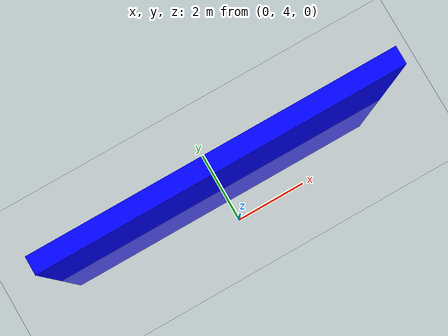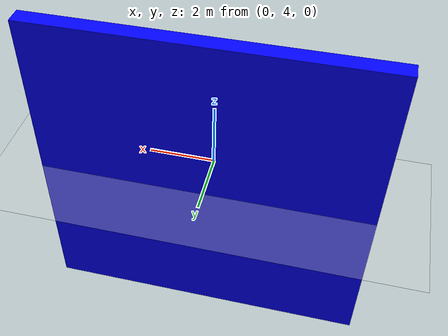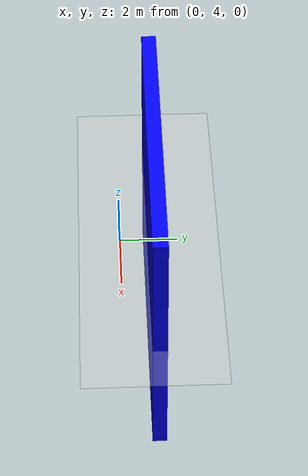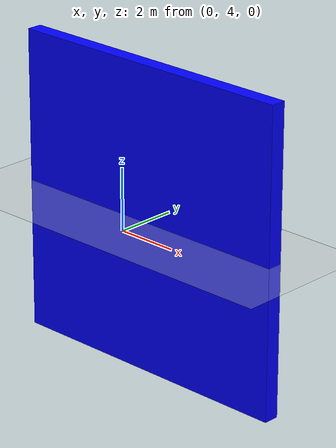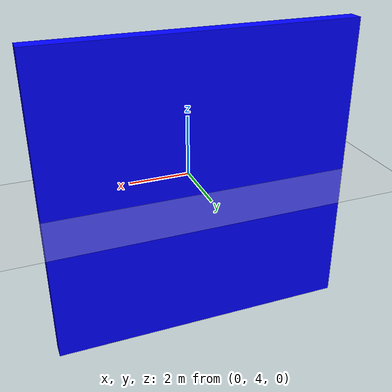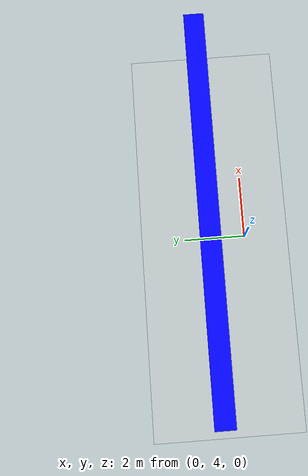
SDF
<sdf version='1.9'>
  <world name='default_wall'>
    <physics type="ode">
      <max_step_size>0.004</max_step_size>
      <real_time_factor>1.0</real_time_factor>
      <real_time_update_rate>250</real_time_update_rate>
    </physics>
    <plugin name='gz::sim::systems::Physics' filename='gz-sim-physics-system'/>
    <plugin name='gz::sim::systems::UserCommands' filename='gz-sim-user-commands-system'/>
    <plugin name='gz::sim::systems::SceneBroadcaster' filename='gz-sim-scene-broadcaster-system'/>
    <plugin name='gz::sim::systems::Contact' filename='gz-sim-contact-system'/>
    <plugin name='gz::sim::systems::Imu' filename='gz-sim-imu-system'/>
    <plugin name='gz::sim::systems::AirPressure' filename='gz-sim-air-pressure-system'/>
    <!-- Force sensor plugin -->
    <plugin name='gz::sim::systems::ForceTorque' filename='gz-sim-forcetorque-system'/>
    <plugin name='gz::sim::systems::Sensors' filename='gz-sim-sensors-system'>
      <render_engine>ogre2</render_engine>
    </plugin>
    <gui fullscreen='false'>
      <plugin name='3D View' filename='GzScene3D'>
        <gz-gui>
          <title>3D View</title>
          <property type='bool' key='showTitleBar'>0</property>
          <property type='string' key='state'>docked</property>
        </gz-gui>
        <engine>ogre2</engine>
        <scene>scene</scene>
        <ambient_light>0.5984631152222222 0.5984631152222222 0.5984631152222222</ambient_light>
        <background_color>0.8984631152222222 0.8984631152222222 0.8984631152222222</background_color>
        <camera_pose>-6 0 6 0 0.5 0</camera_pose>
      </plugin>
      <plugin name='World control' filename='WorldControl'>
        <gz-gui>
          <title>World control</title>
          <property type='bool' key='showTitleBar'>0</property>
          <property type='bool' key='resizable'>0</property>
          <property type='double' key='height'>72</property>
          <property type='double' key='width'>121</property>
          <property type='double' key='z'>1</property>
          <property type='string' key='state'>floating</property>
          <anchors target='3D View'>
            <line own='left' target='left'/>
            <line own='bottom' target='bottom'/>
          </anchors>
        </gz-gui>
        <play_pause>1</play_pause>
        <step>1</step>
        <start_paused>1</start_paused>
      </plugin>
      <plugin name='World stats' filename='WorldStats'>
        <gz-gui>
          <title>World stats</title>
          <property type='bool' key='showTitleBar'>0</property>
          <property type='bool' key='resizable'>0</property>
          <property type='double' key='height'>110</property>
          <property type='double' key='width'>290</property>
          <property type='double' key='z'>1</property>
          <property type='string' key='state'>floating</property>
          <anchors target='3D View'>
            <line own='right' target='right'/>
            <line own='bottom' target='bottom'/>
          </anchors>
        </gz-gui>
        <sim_time>1</sim_time>
        <real_time>1</real_time>
        <real_time_factor>1</real_time_factor>
        <iterations>1</iterations>
      </plugin>
      <plugin name='Entity tree' filename='EntityTree'/>
    </gui>
    <gravity>0 0 -9.8</gravity>
    <magnetic_field>6e-06 2.3e-05 -4.2e-05</magnetic_field>
    <atmosphere type='adiabatic'/>
    <scene>
      <grid>true</grid>
      <ambient>0.4 0.4 0.4 1</ambient>
      <background>0.7 0.7 0.7 1</background>
      <shadows>true</shadows>
    </scene>
    <model name='ground_plane'>
      <static>true</static>
      <link name='link'>
        <collision name='collision'>
          <geometry>
            <plane>
              <normal>0 0 1</normal>
              <size>1 1</size>
            </plane>
          </geometry>
          <surface>
            <friction>
              <ode/>
            </friction>
            <bounce/>
            <contact/>
          </surface>
        </collision>
        <visual name='visual'>
          <geometry>
            <plane>
              <normal>0 0 1</normal>
              <size>100 100</size>
            </plane>
          </geometry>
          <material>
            <ambient>0.8 0.8 0.8 1</ambient>
            <diffuse>0.8 0.8 0.8 1</diffuse>
            <specular>0.8 0.8 0.8 1</specular>
          </material>
        </visual>
        <pose>0 0 0 0 -0 0</pose>
        <inertial>
          <pose>0 0 0 0 -0 0</pose>
          <mass>1</mass>
          <inertia>
            <ixx>1</ixx>
            <ixy>0</ixy>
            <ixz>0</ixz>
            <iyy>1</iyy>
            <iyz>0</iyz>
            <izz>1</izz>
          </inertia>
        </inertial>
        <enable_wind>false</enable_wind>
      </link>
      <pose>0 0 0 0 -0 0</pose>
      <self_collide>false</self_collide>
    </model>
    <light name='sunUTC' type='directional'>
      <pose>0 0 500 0 -0 0</pose>
      <cast_shadows>true</cast_shadows>
      <intensity>1</intensity>
      <direction>0.001 0.625 -0.78</direction>
      <diffuse>0.904 0.904 0.904 1</diffuse>
      <specular>0.271 0.271 0.271 1</specular>
      <attenuation>
        <range>2000</range>
        <linear>0</linear>
        <constant>1</constant>
        <quadratic>0</quadratic>
      </attenuation>
      <spot>
        <inner_angle>0</inner_angle>
        <outer_angle>0</outer_angle>
        <falloff>0</falloff>
      </spot>
    </light>

            <!--wall-->
        <model name='wall'>
            <static>true</static>
            <pose>0 5.20 0 0 0 1.5708</pose><!--pose relative to the world-->
            <link name='box'>
                <pose/>
                <inertial> <!--inertial properties of the link mass, inertia matix-->
                    <mass>1.14395</mass>
                    <inertia>
                        <ixx>9.532917</ixx>
                        <ixy>0</ixy>
                        <ixz>0</ixz>
                        <iyy>0.023832</iyy>
                        <iyz>0</iyz>
                        <izz>9.556749</izz>
                    </inertia>
                </inertial>
                <visual name='visual'>
                    <geometry>
                        <box>
                            <size>0.5 10.0 10</size>
                        </box>
                    </geometry>
                    <!--let's add color to our link-->
                    <material>
                        <ambient>0.0 0.0 1.0 1</ambient>
                        <diffuse>0.0 0.0 1.0 1</diffuse>
                        <specular>0.0 0.0 1.0 1</specular>
                    </material>
                </visual>
                <collision name='collision'> <!--todo: describe why we need the collision-->
                    <geometry>
                        <box>
                            <size>0.5 10.0 10</size>
                        </box>
                    </geometry>
                    <surface>
                      <friction>
                        <ode>
                          <mu>0.4</mu>  <!-- Typical coefficient for metal cast -->
                          <mu2>0.4</mu2> <!-- Secondary coefficient, often same as mu for isotropic materials -->
                          <fdir1>0 0 0</fdir1> <!-- Automatic computation -->
                          <slip1>0.0</slip1> <!-- No slip for realistic static friction -->
                          <slip2>0.0</slip2> <!-- No slip for realistic static friction -->
                        </ode>
                        <bullet>
                          <friction>
                            <friction>0.4</friction> <!-- Primary friction coefficient -->
                            <friction2>0.4</friction2> <!-- Secondary friction coefficient -->
                            <fdir1>0 0 0</fdir1> <!-- Automatic computation -->
                            <rolling_friction>0.01</rolling_friction> <!-- No rolling friction -->
                          </friction>
                        </bullet>
                      </friction>
                  </surface>
                </collision>
            </link>
            </model>
  </world>
</sdf>
